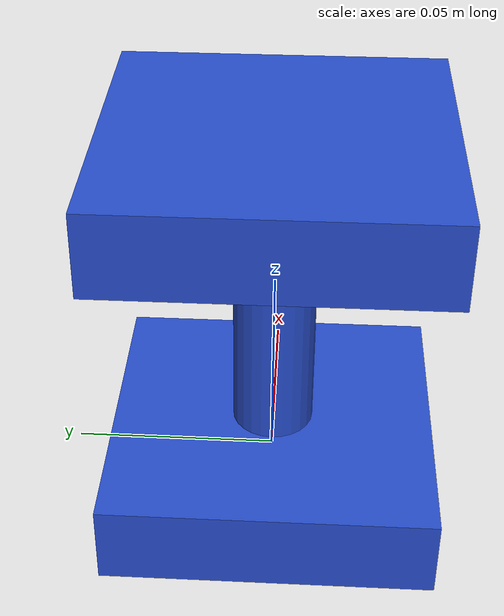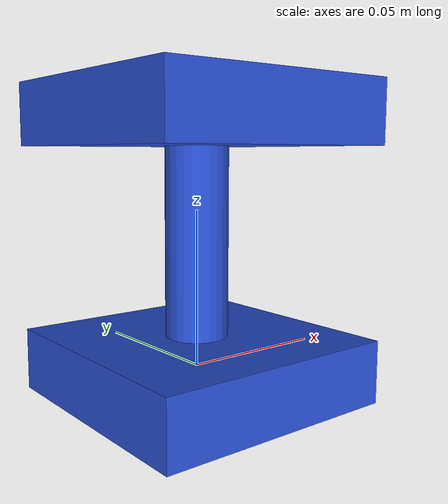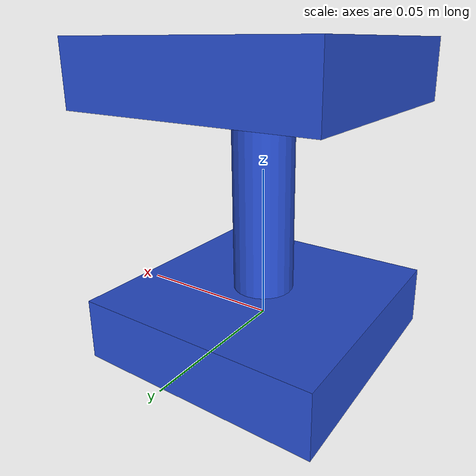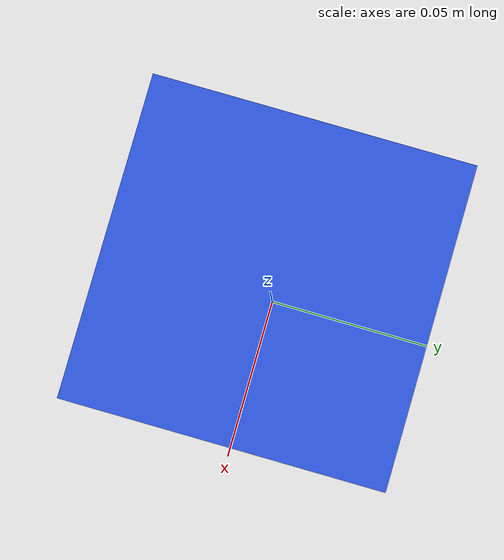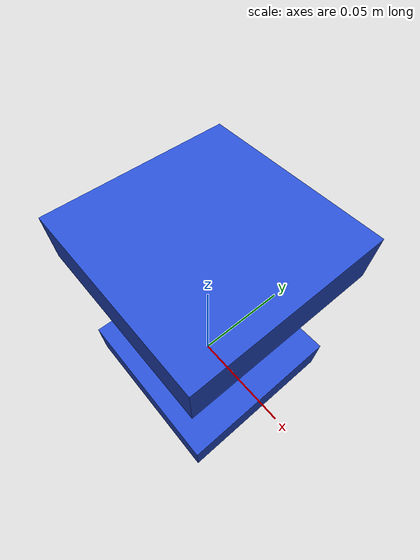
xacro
<robot name="object">
      <link name="link_1">
        <inertial>
          <origin xyz="0.0 0.0 0.0" />
          <mass value="0.05" />
          <inertia  ixx="0.00002833" ixy="0.0"  ixz="0.0"  iyy="0.00002833"  iyz="0.0"  izz="0.00005333" />
        </inertial>
        <visual>
          <origin xyz="0.0 0.0 0.0"/>
         <geometry>
           <box size="0.08 0.08 0.02" />
         </geometry>
       </visual>
       <collision>
         <origin xyz="0.0 0.0 0.0"/>
         <geometry>
           <box size="0.08 0.08 0.02" />
         </geometry>
       </collision>
     </link>
     <gazebo reference="link_1">
       <material>Gazebo/Blue</material>
      </gazebo>

      <link name="link_2">
        <inertial>
          <origin xyz="0.0 0.0 0.04" />
          <mass value="0.2" />
          <inertia  ixx="0.00006500" ixy="0.0"  ixz="0.0"  iyy="0.00006500"  iyz="0.0"  izz="0.00001000" />
        </inertial>
        <visual>
          <origin xyz="0.0 0.0 0.04"/>
         <geometry>
           <cylinder length="0.06" radius="0.01"/>
         </geometry>
       </visual>
       <collision>
         <origin xyz="0.0 0.0 0.04"/>
         <geometry>
           <cylinder length="0.06" radius="0.01"/>
         </geometry>
       </collision>
     </link>
     <gazebo reference="link_2">
       <material>Gazebo/Blue</material>
      </gazebo>

      <link name="link_4">
        <inertial>
          <origin xyz="0.0 0.0 0.04" />
          <mass value="0.2" />
          <inertia  ixx="0.00008000" ixy="0.0"  ixz="0.0"  iyy="0.00008000"  iyz="0.0"  izz="00004000" />
        </inertial>
        <visual>
          <origin xyz="0.0 0.0 0.04"/>
         <geometry>
           <cylinder length="0.06" radius="0.01"/>
         </geometry>
       </visual>
       <collision>
         <origin xyz="0.0 0.0 0.04"/>
         <geometry>
           <cylinder length="0.06" radius="0.02"/>
         </geometry>
       </collision>
     </link>
     <gazebo reference="link_4">
       <material>Gazebo/Blue</material>
       <kp>80000.0</kp>
        <kd>1.0</kd>
       <mu1>100.0</mu1>
        <mu2>100.0</mu2>

      </gazebo>

      <link name="link_3">
        <inertial>
          <origin xyz="0.0 0.0 0.08" />
          <mass value="0.05" />
          <inertia  ixx="0.00002833" ixy="0.0"  ixz="0.0"  iyy="0.00002833"  iyz="0.0"  izz="0.00005333" />
        </inertial>
        <visual>
          <origin xyz="0.0 0.0 0.08"/>
         <geometry>
           <box size="0.08 0.08 0.02" />
         </geometry>
       </visual>
       <collision>
         <origin xyz="0.0 0.0 0.08"/>
         <geometry>
           <box size="0.08 0.08 0.02" />
         </geometry>
       </collision>
     </link>
     <gazebo reference="link_3">
       <material>Gazebo/Blue</material>
      </gazebo>

    <joint name="joint_1" type="fixed">
        <parent link="link_2"/>
        <child link="link_1"/>
        <origin rpy="0.0 0.0 0.0" xyz="0.0 0.0 0.0"/>
      </joint>

    <joint name="joint_2" type="fixed">
        <parent link="link_2"/>
        <child link="link_3"/>
        <origin rpy="0.0 0.0 0.0" xyz="0.0 0.0 0.0"/>
      </joint>

    <joint name="joint_3" type="fixed">
        <parent link="link_2"/>
        <child link="link_4"/>
        <origin rpy="0.0 0.0 0.0" xyz="0.0 0.0 0.0"/>
      </joint>
  </robot>
